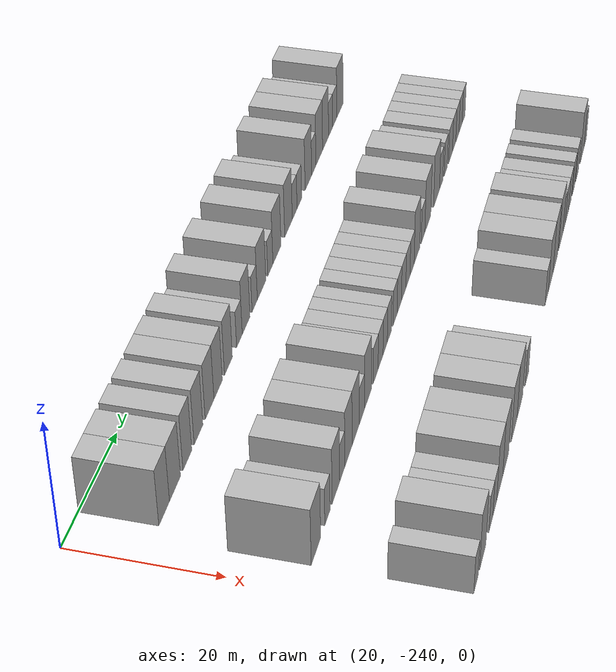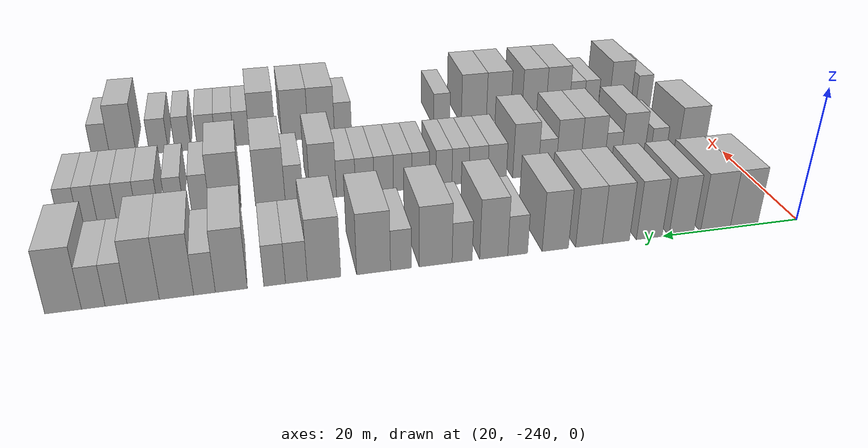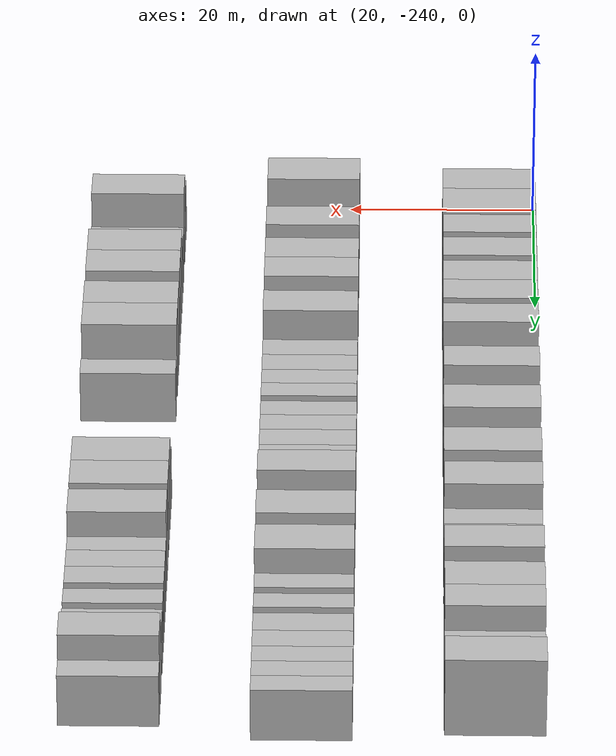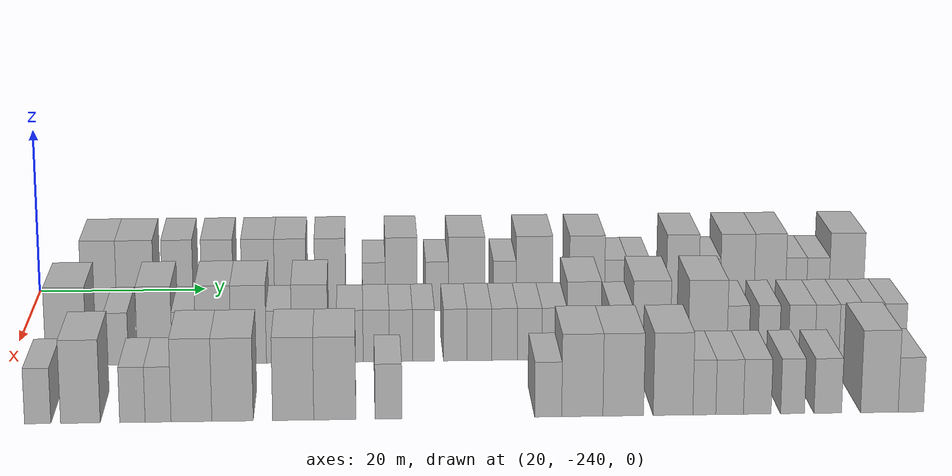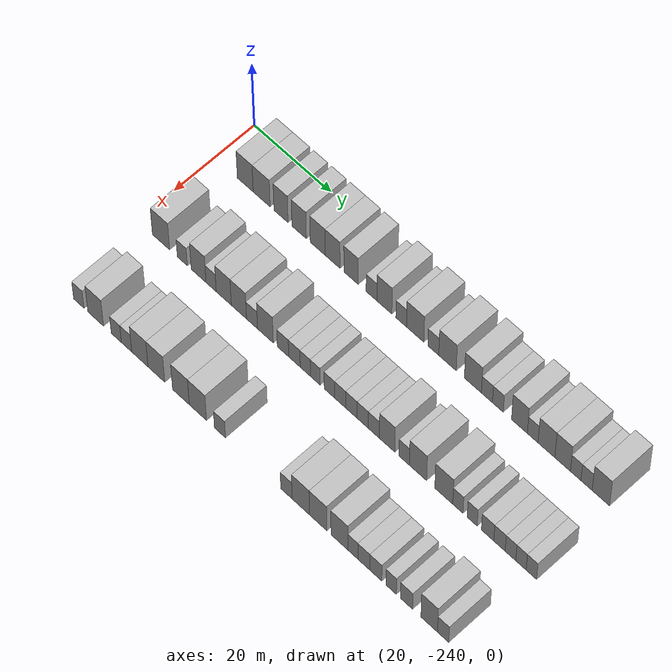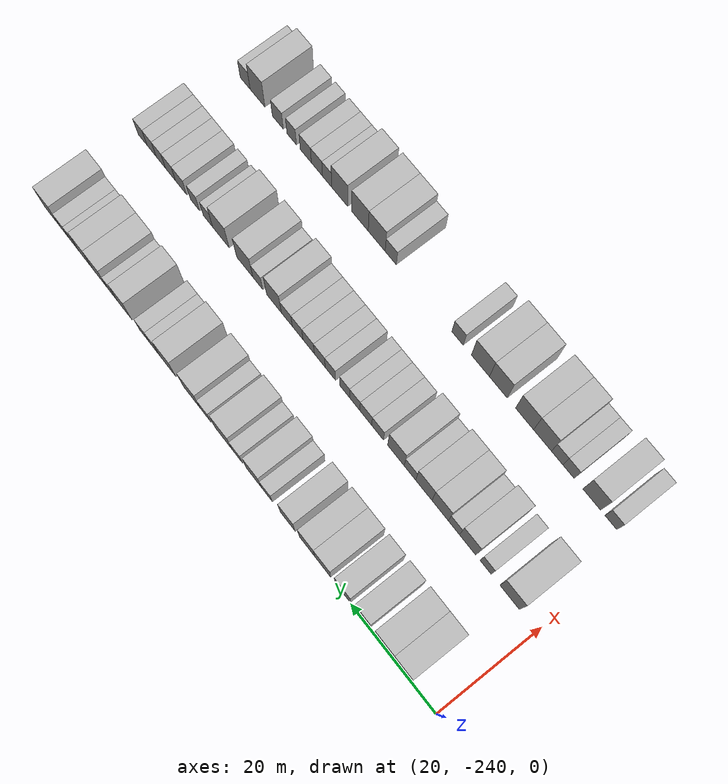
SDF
<sdf version="1.6">
 <world name="default">
  <model name="building_1">
   <static>1</static>
   <pose>25.0000 -231.9300 0 0.000000 0.000000 0.000000</pose>
   <link name="link">
    <pose>0 0 4.50 0 0 0</pose>
    <collision name="collision"><geometry><box><size>10.0000 4.1400 9.0000</size></box></geometry></collision>
    <visual name="visual">
     <cast_shadows>0</cast_shadows>
     <geometry><box><size>10.0000 4.1400 9.0000</size></box></geometry>
     <material>
      <script>
       <uri>model://HANNAS_wall/materials/scripts</uri>
       <uri>model://HANNAS_wall/materials/textures</uri>
       <name>vrc/HANNAS_wall</name>
      </script>
     </material>
    </visual>
   </link>
  </model>
  <model name="building_2">
   <static>1</static>
   <pose>25.0000 -227.6658 0 0.000000 0.000000 0.000000</pose>
   <link name="link">
    <pose>0 0 4.50 0 0 0</pose>
    <collision name="collision"><geometry><box><size>10.0000 4.3886 9.0000</size></box></geometry></collision>
    <visual name="visual">
     <cast_shadows>0</cast_shadows>
     <geometry><box><size>10.0000 4.3886 9.0000</size></box></geometry>
     <material>
      <script>
       <uri>model://HANNAS_wall/materials/scripts</uri>
       <uri>model://HANNAS_wall/materials/textures</uri>
       <name>vrc/HANNAS_wall</name>
      </script>
     </material>
    </visual>
   </link>
  </model>
  <model name="building_3">
   <static>1</static>
   <pose>25.0000 -222.6575 0 0.000000 0.000000 0.000000</pose>
   <link name="link">
    <pose>0 0 4.50 0 0 0</pose>
    <collision name="collision"><geometry><box><size>10.0000 3.6280 9.0000</size></box></geometry></collision>
    <visual name="visual">
     <cast_shadows>0</cast_shadows>
     <geometry><box><size>10.0000 3.6280 9.0000</size></box></geometry>
     <material>
      <script>
       <uri>model://HANNAS_wall/materials/scripts</uri>
       <uri>model://HANNAS_wall/materials/textures</uri>
       <name>vrc/HANNAS_wall</name>
      </script>
     </material>
    </visual>
   </link>
  </model>
  <model name="building_4">
   <static>1</static>
   <pose>25.0000 -217.9881 0 0.000000 0.000000 0.000000</pose>
   <link name="link">
    <pose>0 0 4.50 0 0 0</pose>
    <collision name="collision"><geometry><box><size>10.0000 3.7108 9.0000</size></box></geometry></collision>
    <visual name="visual">
     <cast_shadows>0</cast_shadows>
     <geometry><box><size>10.0000 3.7108 9.0000</size></box></geometry>
     <material>
      <script>
       <uri>model://HANNAS_wall/materials/scripts</uri>
       <uri>model://HANNAS_wall/materials/textures</uri>
       <name>vrc/HANNAS_wall</name>
      </script>
     </material>
    </visual>
   </link>
  </model>
  <model name="building_5">
   <static>1</static>
   <pose>25.0000 -213.2037 0 0.000000 0.000000 0.000000</pose>
   <link name="link">
    <pose>0 0 4.50 0 0 0</pose>
    <collision name="collision"><geometry><box><size>10.0000 3.8580 9.0000</size></box></geometry></collision>
    <visual name="visual">
     <cast_shadows>0</cast_shadows>
     <geometry><box><size>10.0000 3.8580 9.0000</size></box></geometry>
     <material>
      <script>
       <uri>model://HANNAS_wall/materials/scripts</uri>
       <uri>model://HANNAS_wall/materials/textures</uri>
       <name>vrc/HANNAS_wall</name>
      </script>
     </material>
    </visual>
   </link>
  </model>
  <model name="building_6">
   <static>1</static>
   <pose>25.0000 -209.4045 0 0.000000 0.000000 0.000000</pose>
   <link name="link">
    <pose>0 0 4.50 0 0 0</pose>
    <collision name="collision"><geometry><box><size>10.0000 3.7403 9.0000</size></box></geometry></collision>
    <visual name="visual">
     <cast_shadows>0</cast_shadows>
     <geometry><box><size>10.0000 3.7403 9.0000</size></box></geometry>
     <material>
      <script>
       <uri>model://HANNAS_wall/materials/scripts</uri>
       <uri>model://HANNAS_wall/materials/textures</uri>
       <name>vrc/HANNAS_wall</name>
      </script>
     </material>
    </visual>
   </link>
  </model>
  <model name="building_7">
   <static>1</static>
   <pose>25.0000 -204.7164 0 0.000000 0.000000 0.000000</pose>
   <link name="link">
    <pose>0 0 4.50 0 0 0</pose>
    <collision name="collision"><geometry><box><size>10.0000 3.6358 9.0000</size></box></geometry></collision>
    <visual name="visual">
     <cast_shadows>0</cast_shadows>
     <geometry><box><size>10.0000 3.6358 9.0000</size></box></geometry>
     <material>
      <script>
       <uri>model://HANNAS_wall/materials/scripts</uri>
       <uri>model://HANNAS_wall/materials/textures</uri>
       <name>vrc/HANNAS_wall</name>
      </script>
     </material>
    </visual>
   </link>
  </model>
  <model name="building_8">
   <static>1</static>
   <pose>25.0000 -199.5510 0 0.000000 0.000000 0.000000</pose>
   <link name="link">
    <pose>0 0 3.00 0 0 0</pose>
    <collision name="collision"><geometry><box><size>10.0000 2.6950 6.0000</size></box></geometry></collision>
    <visual name="visual">
     <cast_shadows>0</cast_shadows>
     <geometry><box><size>10.0000 2.6950 6.0000</size></box></geometry>
     <material>
      <script>
       <uri>model://HANNAS_wall/materials/scripts</uri>
       <uri>model://HANNAS_wall/materials/textures</uri>
       <name>vrc/HANNAS_wall</name>
      </script>
     </material>
    </visual>
   </link>
  </model>
  <model name="building_9">
   <static>1</static>
   <pose>25.0000 -196.3147 0 0.000000 0.000000 0.000000</pose>
   <link name="link">
    <pose>0 0 4.50 0 0 0</pose>
    <collision name="collision"><geometry><box><size>10.0000 3.7777 9.0000</size></box></geometry></collision>
    <visual name="visual">
     <cast_shadows>0</cast_shadows>
     <geometry><box><size>10.0000 3.7777 9.0000</size></box></geometry>
     <material>
      <script>
       <uri>model://HANNAS_wall/materials/scripts</uri>
       <uri>model://HANNAS_wall/materials/textures</uri>
       <name>vrc/HANNAS_wall</name>
      </script>
     </material>
    </visual>
   </link>
  </model>
  <model name="building_10">
   <static>1</static>
   <pose>25.0000 -192.0925 0 0.000000 0.000000 0.000000</pose>
   <link name="link">
    <pose>0 0 3.00 0 0 0</pose>
    <collision name="collision"><geometry><box><size>10.0000 2.6668 6.0000</size></box></geometry></collision>
    <visual name="visual">
     <cast_shadows>0</cast_shadows>
     <geometry><box><size>10.0000 2.6668 6.0000</size></box></geometry>
     <material>
      <script>
       <uri>model://HANNAS_wall/materials/scripts</uri>
       <uri>model://HANNAS_wall/materials/textures</uri>
       <name>vrc/HANNAS_wall</name>
      </script>
     </material>
    </visual>
   </link>
  </model>
  <model name="building_11">
   <static>1</static>
   <pose>25.0000 -188.5993 0 0.000000 0.000000 0.000000</pose>
   <link name="link">
    <pose>0 0 4.50 0 0 0</pose>
    <collision name="collision"><geometry><box><size>10.0000 4.3197 9.0000</size></box></geometry></collision>
    <visual name="visual">
     <cast_shadows>0</cast_shadows>
     <geometry><box><size>10.0000 4.3197 9.0000</size></box></geometry>
     <material>
      <script>
       <uri>model://HANNAS_wall/materials/scripts</uri>
       <uri>model://HANNAS_wall/materials/textures</uri>
       <name>vrc/HANNAS_wall</name>
      </script>
     </material>
    </visual>
   </link>
  </model>
  <model name="building_12">
   <static>1</static>
   <pose>25.0000 -184.0821 0 0.000000 0.000000 0.000000</pose>
   <link name="link">
    <pose>0 0 3.00 0 0 0</pose>
    <collision name="collision"><geometry><box><size>10.0000 2.7145 6.0000</size></box></geometry></collision>
    <visual name="visual">
     <cast_shadows>0</cast_shadows>
     <geometry><box><size>10.0000 2.7145 6.0000</size></box></geometry>
     <material>
      <script>
       <uri>model://HANNAS_wall/materials/scripts</uri>
       <uri>model://HANNAS_wall/materials/textures</uri>
       <name>vrc/HANNAS_wall</name>
      </script>
     </material>
    </visual>
   </link>
  </model>
  <model name="building_13">
   <static>1</static>
   <pose>25.0000 -180.5625 0 0.000000 0.000000 0.000000</pose>
   <link name="link">
    <pose>0 0 4.50 0 0 0</pose>
    <collision name="collision"><geometry><box><size>10.0000 4.3248 9.0000</size></box></geometry></collision>
    <visual name="visual">
     <cast_shadows>0</cast_shadows>
     <geometry><box><size>10.0000 4.3248 9.0000</size></box></geometry>
     <material>
      <script>
       <uri>model://HANNAS_wall/materials/scripts</uri>
       <uri>model://HANNAS_wall/materials/textures</uri>
       <name>vrc/HANNAS_wall</name>
      </script>
     </material>
    </visual>
   </link>
  </model>
  <model name="building_14">
   <static>1</static>
   <pose>25.0000 -174.3035 0 0.000000 0.000000 0.000000</pose>
   <link name="link">
    <pose>0 0 4.50 0 0 0</pose>
    <collision name="collision"><geometry><box><size>10.0000 4.1932 9.0000</size></box></geometry></collision>
    <visual name="visual">
     <cast_shadows>0</cast_shadows>
     <geometry><box><size>10.0000 4.1932 9.0000</size></box></geometry>
     <material>
      <script>
       <uri>model://HANNAS_wall/materials/scripts</uri>
       <uri>model://HANNAS_wall/materials/textures</uri>
       <name>vrc/HANNAS_wall</name>
      </script>
     </material>
    </visual>
   </link>
  </model>
  <model name="building_15">
   <static>1</static>
   <pose>25.0000 -170.8588 0 0.000000 0.000000 0.000000</pose>
   <link name="link">
    <pose>0 0 3.00 0 0 0</pose>
    <collision name="collision"><geometry><box><size>10.0000 2.6962 6.0000</size></box></geometry></collision>
    <visual name="visual">
     <cast_shadows>0</cast_shadows>
     <geometry><box><size>10.0000 2.6962 6.0000</size></box></geometry>
     <material>
      <script>
       <uri>model://HANNAS_wall/materials/scripts</uri>
       <uri>model://HANNAS_wall/materials/textures</uri>
       <name>vrc/HANNAS_wall</name>
      </script>
     </material>
    </visual>
   </link>
  </model>
  <model name="building_16">
   <static>1</static>
   <pose>25.0000 -168.1811 0 0.000000 0.000000 0.000000</pose>
   <link name="link">
    <pose>0 0 3.00 0 0 0</pose>
    <collision name="collision"><geometry><box><size>10.0000 2.6592 6.0000</size></box></geometry></collision>
    <visual name="visual">
     <cast_shadows>0</cast_shadows>
     <geometry><box><size>10.0000 2.6592 6.0000</size></box></geometry>
     <material>
      <script>
       <uri>model://HANNAS_wall/materials/scripts</uri>
       <uri>model://HANNAS_wall/materials/textures</uri>
       <name>vrc/HANNAS_wall</name>
      </script>
     </material>
    </visual>
   </link>
  </model>
  <model name="building_17">
   <static>1</static>
   <pose>25.0000 -162.9229 0 0.000000 0.000000 0.000000</pose>
   <link name="link">
    <pose>0 0 4.50 0 0 0</pose>
    <collision name="collision"><geometry><box><size>10.0000 3.8572 9.0000</size></box></geometry></collision>
    <visual name="visual">
     <cast_shadows>0</cast_shadows>
     <geometry><box><size>10.0000 3.8572 9.0000</size></box></geometry>
     <material>
      <script>
       <uri>model://HANNAS_wall/materials/scripts</uri>
       <uri>model://HANNAS_wall/materials/textures</uri>
       <name>vrc/HANNAS_wall</name>
      </script>
     </material>
    </visual>
   </link>
  </model>
  <model name="building_18">
   <static>1</static>
   <pose>25.0000 -159.7035 0 0.000000 0.000000 0.000000</pose>
   <link name="link">
    <pose>0 0 3.00 0 0 0</pose>
    <collision name="collision"><geometry><box><size>10.0000 2.5816 6.0000</size></box></geometry></collision>
    <visual name="visual">
     <cast_shadows>0</cast_shadows>
     <geometry><box><size>10.0000 2.5816 6.0000</size></box></geometry>
     <material>
      <script>
       <uri>model://HANNAS_wall/materials/scripts</uri>
       <uri>model://HANNAS_wall/materials/textures</uri>
       <name>vrc/HANNAS_wall</name>
      </script>
     </material>
    </visual>
   </link>
  </model>
  <model name="building_19">
   <static>1</static>
   <pose>25.0000 -156.3843 0 0.000000 0.000000 0.000000</pose>
   <link name="link">
    <pose>0 0 4.50 0 0 0</pose>
    <collision name="collision"><geometry><box><size>10.0000 4.0568 9.0000</size></box></geometry></collision>
    <visual name="visual">
     <cast_shadows>0</cast_shadows>
     <geometry><box><size>10.0000 4.0568 9.0000</size></box></geometry>
     <material>
      <script>
       <uri>model://HANNAS_wall/materials/scripts</uri>
       <uri>model://HANNAS_wall/materials/textures</uri>
       <name>vrc/HANNAS_wall</name>
      </script>
     </material>
    </visual>
   </link>
  </model>
  <model name="building_20">
   <static>1</static>
   <pose>25.0000 -152.4815 0 0.000000 0.000000 0.000000</pose>
   <link name="link">
    <pose>0 0 4.50 0 0 0</pose>
    <collision name="collision"><geometry><box><size>10.0000 3.7489 9.0000</size></box></geometry></collision>
    <visual name="visual">
     <cast_shadows>0</cast_shadows>
     <geometry><box><size>10.0000 3.7489 9.0000</size></box></geometry>
     <material>
      <script>
       <uri>model://HANNAS_wall/materials/scripts</uri>
       <uri>model://HANNAS_wall/materials/textures</uri>
       <name>vrc/HANNAS_wall</name>
      </script>
     </material>
    </visual>
   </link>
  </model>
  <model name="building_21">
   <static>1</static>
   <pose>25.0000 -149.3483 0 0.000000 0.000000 0.000000</pose>
   <link name="link">
    <pose>0 0 3.00 0 0 0</pose>
    <collision name="collision"><geometry><box><size>10.0000 2.5174 6.0000</size></box></geometry></collision>
    <visual name="visual">
     <cast_shadows>0</cast_shadows>
     <geometry><box><size>10.0000 2.5174 6.0000</size></box></geometry>
     <material>
      <script>
       <uri>model://HANNAS_wall/materials/scripts</uri>
       <uri>model://HANNAS_wall/materials/textures</uri>
       <name>vrc/HANNAS_wall</name>
      </script>
     </material>
    </visual>
   </link>
  </model>
  <model name="building_22">
   <static>1</static>
   <pose>25.0000 -146.7445 0 0.000000 0.000000 0.000000</pose>
   <link name="link">
    <pose>0 0 3.00 0 0 0</pose>
    <collision name="collision"><geometry><box><size>10.0000 2.6901 6.0000</size></box></geometry></collision>
    <visual name="visual">
     <cast_shadows>0</cast_shadows>
     <geometry><box><size>10.0000 2.6901 6.0000</size></box></geometry>
     <material>
      <script>
       <uri>model://HANNAS_wall/materials/scripts</uri>
       <uri>model://HANNAS_wall/materials/textures</uri>
       <name>vrc/HANNAS_wall</name>
      </script>
     </material>
    </visual>
   </link>
  </model>
  <model name="building_23">
   <static>1</static>
   <pose>25.0000 -143.3274 0 0.000000 0.000000 0.000000</pose>
   <link name="link">
    <pose>0 0 4.50 0 0 0</pose>
    <collision name="collision"><geometry><box><size>10.0000 4.1442 9.0000</size></box></geometry></collision>
    <visual name="visual">
     <cast_shadows>0</cast_shadows>
     <geometry><box><size>10.0000 4.1442 9.0000</size></box></geometry>
     <material>
      <script>
       <uri>model://HANNAS_wall/materials/scripts</uri>
       <uri>model://HANNAS_wall/materials/textures</uri>
       <name>vrc/HANNAS_wall</name>
      </script>
     </material>
    </visual>
   </link>
  </model>
  <model name="building_118">
   <static>1</static>
   <pose>44.0000 -233.7521 0 0.000000 0.000000 0.000000</pose>
   <link name="link">
    <pose>0 0 4.50 0 0 0</pose>
    <collision name="collision"><geometry><box><size>10.0000 4.4958 9.0000</size></box></geometry></collision>
    <visual name="visual">
     <cast_shadows>0</cast_shadows>
     <geometry><box><size>10.0000 4.4958 9.0000</size></box></geometry>
     <material>
      <script>
       <uri>model://HANNAS_wall/materials/scripts</uri>
       <uri>model://HANNAS_wall/materials/textures</uri>
       <name>vrc/HANNAS_wall</name>
      </script>
     </material>
    </visual>
   </link>
  </model>
  <model name="building_119">
   <static>1</static>
   <pose>44.0000 -228.2016 0 0.000000 0.000000 0.000000</pose>
   <link name="link">
    <pose>0 0 3.00 0 0 0</pose>
    <collision name="collision"><geometry><box><size>10.0000 2.6052 6.0000</size></box></geometry></collision>
    <visual name="visual">
     <cast_shadows>0</cast_shadows>
     <geometry><box><size>10.0000 2.6052 6.0000</size></box></geometry>
     <material>
      <script>
       <uri>model://HANNAS_wall/materials/scripts</uri>
       <uri>model://HANNAS_wall/materials/textures</uri>
       <name>vrc/HANNAS_wall</name>
      </script>
     </material>
    </visual>
   </link>
  </model>
  <model name="building_120">
   <static>1</static>
   <pose>44.0000 -223.9816 0 0.000000 0.000000 0.000000</pose>
   <link name="link">
    <pose>0 0 4.50 0 0 0</pose>
    <collision name="collision"><geometry><box><size>10.0000 3.8347 9.0000</size></box></geometry></collision>
    <visual name="visual">
     <cast_shadows>0</cast_shadows>
     <geometry><box><size>10.0000 3.8347 9.0000</size></box></geometry>
     <material>
      <script>
       <uri>model://HANNAS_wall/materials/scripts</uri>
       <uri>model://HANNAS_wall/materials/textures</uri>
       <name>vrc/HANNAS_wall</name>
      </script>
     </material>
    </visual>
   </link>
  </model>
  <model name="building_121">
   <static>1</static>
   <pose>44.0000 -220.7462 0 0.000000 0.000000 0.000000</pose>
   <link name="link">
    <pose>0 0 3.00 0 0 0</pose>
    <collision name="collision"><geometry><box><size>10.0000 2.6362 6.0000</size></box></geometry></collision>
    <visual name="visual">
     <cast_shadows>0</cast_shadows>
     <geometry><box><size>10.0000 2.6362 6.0000</size></box></geometry>
     <material>
      <script>
       <uri>model://HANNAS_wall/materials/scripts</uri>
       <uri>model://HANNAS_wall/materials/textures</uri>
       <name>vrc/HANNAS_wall</name>
      </script>
     </material>
    </visual>
   </link>
  </model>
  <model name="building_122">
   <static>1</static>
   <pose>44.0000 -217.4880 0 0.000000 0.000000 0.000000</pose>
   <link name="link">
    <pose>0 0 4.50 0 0 0</pose>
    <collision name="collision"><geometry><box><size>10.0000 3.8800 9.0000</size></box></geometry></collision>
    <visual name="visual">
     <cast_shadows>0</cast_shadows>
     <geometry><box><size>10.0000 3.8800 9.0000</size></box></geometry>
     <material>
      <script>
       <uri>model://HANNAS_wall/materials/scripts</uri>
       <uri>model://HANNAS_wall/materials/textures</uri>
       <name>vrc/HANNAS_wall</name>
      </script>
     </material>
    </visual>
   </link>
  </model>
  <model name="building_123">
   <static>1</static>
   <pose>44.0000 -213.5991 0 0.000000 0.000000 0.000000</pose>
   <link name="link">
    <pose>0 0 4.50 0 0 0</pose>
    <collision name="collision"><geometry><box><size>10.0000 3.8978 9.0000</size></box></geometry></collision>
    <visual name="visual">
     <cast_shadows>0</cast_shadows>
     <geometry><box><size>10.0000 3.8978 9.0000</size></box></geometry>
     <material>
      <script>
       <uri>model://HANNAS_wall/materials/scripts</uri>
       <uri>model://HANNAS_wall/materials/textures</uri>
       <name>vrc/HANNAS_wall</name>
      </script>
     </material>
    </visual>
   </link>
  </model>
  <model name="building_124">
   <static>1</static>
   <pose>44.0000 -210.2439 0 0.000000 0.000000 0.000000</pose>
   <link name="link">
    <pose>0 0 3.00 0 0 0</pose>
    <collision name="collision"><geometry><box><size>10.0000 2.8127 6.0000</size></box></geometry></collision>
    <visual name="visual">
     <cast_shadows>0</cast_shadows>
     <geometry><box><size>10.0000 2.8127 6.0000</size></box></geometry>
     <material>
      <script>
       <uri>model://HANNAS_wall/materials/scripts</uri>
       <uri>model://HANNAS_wall/materials/textures</uri>
       <name>vrc/HANNAS_wall</name>
      </script>
     </material>
    </visual>
   </link>
  </model>
  <model name="building_125">
   <static>1</static>
   <pose>44.0000 -206.8355 0 0.000000 0.000000 0.000000</pose>
   <link name="link">
    <pose>0 0 4.50 0 0 0</pose>
    <collision name="collision"><geometry><box><size>10.0000 4.0039 9.0000</size></box></geometry></collision>
    <visual name="visual">
     <cast_shadows>0</cast_shadows>
     <geometry><box><size>10.0000 4.0039 9.0000</size></box></geometry>
     <material>
      <script>
       <uri>model://HANNAS_wall/materials/scripts</uri>
       <uri>model://HANNAS_wall/materials/textures</uri>
       <name>vrc/HANNAS_wall</name>
      </script>
     </material>
    </visual>
   </link>
  </model>
  <model name="building_126">
   <static>1</static>
   <pose>44.0000 -202.3803 0 0.000000 0.000000 0.000000</pose>
   <link name="link">
    <pose>0 0 3.00 0 0 0</pose>
    <collision name="collision"><geometry><box><size>10.0000 2.9065 6.0000</size></box></geometry></collision>
    <visual name="visual">
     <cast_shadows>0</cast_shadows>
     <geometry><box><size>10.0000 2.9065 6.0000</size></box></geometry>
     <material>
      <script>
       <uri>model://HANNAS_wall/materials/scripts</uri>
       <uri>model://HANNAS_wall/materials/textures</uri>
       <name>vrc/HANNAS_wall</name>
      </script>
     </material>
    </visual>
   </link>
  </model>
  <model name="building_127">
   <static>1</static>
   <pose>44.0000 -199.4735 0 0.000000 0.000000 0.000000</pose>
   <link name="link">
    <pose>0 0 3.00 0 0 0</pose>
    <collision name="collision"><geometry><box><size>10.0000 2.9071 6.0000</size></box></geometry></collision>
    <visual name="visual">
     <cast_shadows>0</cast_shadows>
     <geometry><box><size>10.0000 2.9071 6.0000</size></box></geometry>
     <material>
      <script>
       <uri>model://HANNAS_wall/materials/scripts</uri>
       <uri>model://HANNAS_wall/materials/textures</uri>
       <name>vrc/HANNAS_wall</name>
      </script>
     </material>
    </visual>
   </link>
  </model>
  <model name="building_128">
   <static>1</static>
   <pose>44.0000 -196.7308 0 0.000000 0.000000 0.000000</pose>
   <link name="link">
    <pose>0 0 3.00 0 0 0</pose>
    <collision name="collision"><geometry><box><size>10.0000 2.5783 6.0000</size></box></geometry></collision>
    <visual name="visual">
     <cast_shadows>0</cast_shadows>
     <geometry><box><size>10.0000 2.5783 6.0000</size></box></geometry>
     <material>
      <script>
       <uri>model://HANNAS_wall/materials/scripts</uri>
       <uri>model://HANNAS_wall/materials/textures</uri>
       <name>vrc/HANNAS_wall</name>
      </script>
     </material>
    </visual>
   </link>
  </model>
  <model name="building_129">
   <static>1</static>
   <pose>44.0000 -194.2161 0 0.000000 0.000000 0.000000</pose>
   <link name="link">
    <pose>0 0 3.00 0 0 0</pose>
    <collision name="collision"><geometry><box><size>10.0000 2.4512 6.0000</size></box></geometry></collision>
    <visual name="visual">
     <cast_shadows>0</cast_shadows>
     <geometry><box><size>10.0000 2.4512 6.0000</size></box></geometry>
     <material>
      <script>
       <uri>model://HANNAS_wall/materials/scripts</uri>
       <uri>model://HANNAS_wall/materials/textures</uri>
       <name>vrc/HANNAS_wall</name>
      </script>
     </material>
    </visual>
   </link>
  </model>
  <model name="building_130">
   <static>1</static>
   <pose>44.0000 -190.6814 0 0.000000 0.000000 0.000000</pose>
   <link name="link">
    <pose>0 0 3.00 0 0 0</pose>
    <collision name="collision"><geometry><box><size>10.0000 2.6181 6.0000</size></box></geometry></collision>
    <visual name="visual">
     <cast_shadows>0</cast_shadows>
     <geometry><box><size>10.0000 2.6181 6.0000</size></box></geometry>
     <material>
      <script>
       <uri>model://HANNAS_wall/materials/scripts</uri>
       <uri>model://HANNAS_wall/materials/textures</uri>
       <name>vrc/HANNAS_wall</name>
      </script>
     </material>
    </visual>
   </link>
  </model>
  <model name="building_131">
   <static>1</static>
   <pose>44.0000 -188.0033 0 0.000000 0.000000 0.000000</pose>
   <link name="link">
    <pose>0 0 3.00 0 0 0</pose>
    <collision name="collision"><geometry><box><size>10.0000 2.7381 6.0000</size></box></geometry></collision>
    <visual name="visual">
     <cast_shadows>0</cast_shadows>
     <geometry><box><size>10.0000 2.7381 6.0000</size></box></geometry>
     <material>
      <script>
       <uri>model://HANNAS_wall/materials/scripts</uri>
       <uri>model://HANNAS_wall/materials/textures</uri>
       <name>vrc/HANNAS_wall</name>
      </script>
     </material>
    </visual>
   </link>
  </model>
  <model name="building_132">
   <static>1</static>
   <pose>44.0000 -185.1999 0 0.000000 0.000000 0.000000</pose>
   <link name="link">
    <pose>0 0 3.00 0 0 0</pose>
    <collision name="collision"><geometry><box><size>10.0000 2.8688 6.0000</size></box></geometry></collision>
    <visual name="visual">
     <cast_shadows>0</cast_shadows>
     <geometry><box><size>10.0000 2.8688 6.0000</size></box></geometry>
     <material>
      <script>
       <uri>model://HANNAS_wall/materials/scripts</uri>
       <uri>model://HANNAS_wall/materials/textures</uri>
       <name>vrc/HANNAS_wall</name>
      </script>
     </material>
    </visual>
   </link>
  </model>
  <model name="building_133">
   <static>1</static>
   <pose>44.0000 -182.4056 0 0.000000 0.000000 0.000000</pose>
   <link name="link">
    <pose>0 0 3.00 0 0 0</pose>
    <collision name="collision"><geometry><box><size>10.0000 2.7199 6.0000</size></box></geometry></collision>
    <visual name="visual">
     <cast_shadows>0</cast_shadows>
     <geometry><box><size>10.0000 2.7199 6.0000</size></box></geometry>
     <material>
      <script>
       <uri>model://HANNAS_wall/materials/scripts</uri>
       <uri>model://HANNAS_wall/materials/textures</uri>
       <name>vrc/HANNAS_wall</name>
      </script>
     </material>
    </visual>
   </link>
  </model>
  <model name="building_134">
   <static>1</static>
   <pose>44.0000 -179.6559 0 0.000000 0.000000 0.000000</pose>
   <link name="link">
    <pose>0 0 3.00 0 0 0</pose>
    <collision name="collision"><geometry><box><size>10.0000 2.7794 6.0000</size></box></geometry></collision>
    <visual name="visual">
     <cast_shadows>0</cast_shadows>
     <geometry><box><size>10.0000 2.7794 6.0000</size></box></geometry>
     <material>
      <script>
       <uri>model://HANNAS_wall/materials/scripts</uri>
       <uri>model://HANNAS_wall/materials/textures</uri>
       <name>vrc/HANNAS_wall</name>
      </script>
     </material>
    </visual>
   </link>
  </model>
  <model name="building_135">
   <static>1</static>
   <pose>44.0000 -176.3623 0 0.000000 0.000000 0.000000</pose>
   <link name="link">
    <pose>0 0 4.50 0 0 0</pose>
    <collision name="collision"><geometry><box><size>10.0000 3.8079 9.0000</size></box></geometry></collision>
    <visual name="visual">
     <cast_shadows>0</cast_shadows>
     <geometry><box><size>10.0000 3.8079 9.0000</size></box></geometry>
     <material>
      <script>
       <uri>model://HANNAS_wall/materials/scripts</uri>
       <uri>model://HANNAS_wall/materials/textures</uri>
       <name>vrc/HANNAS_wall</name>
      </script>
     </material>
    </visual>
   </link>
  </model>
  <model name="building_136">
   <static>1</static>
   <pose>44.0000 -172.1785 0 0.000000 0.000000 0.000000</pose>
   <link name="link">
    <pose>0 0 3.00 0 0 0</pose>
    <collision name="collision"><geometry><box><size>10.0000 2.5597 6.0000</size></box></geometry></collision>
    <visual name="visual">
     <cast_shadows>0</cast_shadows>
     <geometry><box><size>10.0000 2.5597 6.0000</size></box></geometry>
     <material>
      <script>
       <uri>model://HANNAS_wall/materials/scripts</uri>
       <uri>model://HANNAS_wall/materials/textures</uri>
       <name>vrc/HANNAS_wall</name>
      </script>
     </material>
    </visual>
   </link>
  </model>
  <model name="building_137">
   <static>1</static>
   <pose>44.0000 -168.7925 0 0.000000 0.000000 0.000000</pose>
   <link name="link">
    <pose>0 0 4.50 0 0 0</pose>
    <collision name="collision"><geometry><box><size>10.0000 4.2124 9.0000</size></box></geometry></collision>
    <visual name="visual">
     <cast_shadows>0</cast_shadows>
     <geometry><box><size>10.0000 4.2124 9.0000</size></box></geometry>
     <material>
      <script>
       <uri>model://HANNAS_wall/materials/scripts</uri>
       <uri>model://HANNAS_wall/materials/textures</uri>
       <name>vrc/HANNAS_wall</name>
      </script>
     </material>
    </visual>
   </link>
  </model>
  <model name="building_138">
   <static>1</static>
   <pose>44.0000 -162.5073 0 0.000000 0.000000 0.000000</pose>
   <link name="link">
    <pose>0 0 4.50 0 0 0</pose>
    <collision name="collision"><geometry><box><size>10.0000 4.3579 9.0000</size></box></geometry></collision>
    <visual name="visual">
     <cast_shadows>0</cast_shadows>
     <geometry><box><size>10.0000 4.3579 9.0000</size></box></geometry>
     <material>
      <script>
       <uri>model://HANNAS_wall/materials/scripts</uri>
       <uri>model://HANNAS_wall/materials/textures</uri>
       <name>vrc/HANNAS_wall</name>
      </script>
     </material>
    </visual>
   </link>
  </model>
  <model name="building_139">
   <static>1</static>
   <pose>44.0000 -159.0869 0 0.000000 0.000000 0.000000</pose>
   <link name="link">
    <pose>0 0 3.00 0 0 0</pose>
    <collision name="collision"><geometry><box><size>10.0000 2.4829 6.0000</size></box></geometry></collision>
    <visual name="visual">
     <cast_shadows>0</cast_shadows>
     <geometry><box><size>10.0000 2.4829 6.0000</size></box></geometry>
     <material>
      <script>
       <uri>model://HANNAS_wall/materials/scripts</uri>
       <uri>model://HANNAS_wall/materials/textures</uri>
       <name>vrc/HANNAS_wall</name>
      </script>
     </material>
    </visual>
   </link>
  </model>
  <model name="building_140">
   <static>1</static>
   <pose>44.0000 -155.6313 0 0.000000 0.000000 0.000000</pose>
   <link name="link">
    <pose>0 0 3.00 0 0 0</pose>
    <collision name="collision"><geometry><box><size>10.0000 2.4282 6.0000</size></box></geometry></collision>
    <visual name="visual">
     <cast_shadows>0</cast_shadows>
     <geometry><box><size>10.0000 2.4282 6.0000</size></box></geometry>
     <material>
      <script>
       <uri>model://HANNAS_wall/materials/scripts</uri>
       <uri>model://HANNAS_wall/materials/textures</uri>
       <name>vrc/HANNAS_wall</name>
      </script>
     </material>
    </visual>
   </link>
  </model>
  <model name="building_141">
   <static>1</static>
   <pose>44.0000 -151.9182 0 0.000000 0.000000 0.000000</pose>
   <link name="link">
    <pose>0 0 3.00 0 0 0</pose>
    <collision name="collision"><geometry><box><size>10.0000 2.9980 6.0000</size></box></geometry></collision>
    <visual name="visual">
     <cast_shadows>0</cast_shadows>
     <geometry><box><size>10.0000 2.9980 6.0000</size></box></geometry>
     <material>
      <script>
       <uri>model://HANNAS_wall/materials/scripts</uri>
       <uri>model://HANNAS_wall/materials/textures</uri>
       <name>vrc/HANNAS_wall</name>
      </script>
     </material>
    </visual>
   </link>
  </model>
  <model name="building_142">
   <static>1</static>
   <pose>44.0000 -149.0606 0 0.000000 0.000000 0.000000</pose>
   <link name="link">
    <pose>0 0 3.00 0 0 0</pose>
    <collision name="collision"><geometry><box><size>10.0000 2.7173 6.0000</size></box></geometry></collision>
    <visual name="visual">
     <cast_shadows>0</cast_shadows>
     <geometry><box><size>10.0000 2.7173 6.0000</size></box></geometry>
     <material>
      <script>
       <uri>model://HANNAS_wall/materials/scripts</uri>
       <uri>model://HANNAS_wall/materials/textures</uri>
       <name>vrc/HANNAS_wall</name>
      </script>
     </material>
    </visual>
   </link>
  </model>
  <model name="building_143">
   <static>1</static>
   <pose>44.0000 -146.4356 0 0.000000 0.000000 0.000000</pose>
   <link name="link">
    <pose>0 0 3.00 0 0 0</pose>
    <collision name="collision"><geometry><box><size>10.0000 2.5328 6.0000</size></box></geometry></collision>
    <visual name="visual">
     <cast_shadows>0</cast_shadows>
     <geometry><box><size>10.0000 2.5328 6.0000</size></box></geometry>
     <material>
      <script>
       <uri>model://HANNAS_wall/materials/scripts</uri>
       <uri>model://HANNAS_wall/materials/textures</uri>
       <name>vrc/HANNAS_wall</name>
      </script>
     </material>
    </visual>
   </link>
  </model>
  <model name="building_144">
   <static>1</static>
   <pose>44.0000 -143.9259 0 0.000000 0.000000 0.000000</pose>
   <link name="link">
    <pose>0 0 3.00 0 0 0</pose>
    <collision name="collision"><geometry><box><size>10.0000 2.4866 6.0000</size></box></geometry></collision>
    <visual name="visual">
     <cast_shadows>0</cast_shadows>
     <geometry><box><size>10.0000 2.4866 6.0000</size></box></geometry>
     <material>
      <script>
       <uri>model://HANNAS_wall/materials/scripts</uri>
       <uri>model://HANNAS_wall/materials/textures</uri>
       <name>vrc/HANNAS_wall</name>
      </script>
     </material>
    </visual>
   </link>
  </model>
  <model name="building_145">
   <static>1</static>
   <pose>44.0000 -141.4397 0 0.000000 0.000000 0.000000</pose>
   <link name="link">
    <pose>0 0 3.00 0 0 0</pose>
    <collision name="collision"><geometry><box><size>10.0000 2.4858 6.0000</size></box></geometry></collision>
    <visual name="visual">
     <cast_shadows>0</cast_shadows>
     <geometry><box><size>10.0000 2.4858 6.0000</size></box></geometry>
     <material>
      <script>
       <uri>model://HANNAS_wall/materials/scripts</uri>
       <uri>model://HANNAS_wall/materials/textures</uri>
       <name>vrc/HANNAS_wall</name>
      </script>
     </material>
    </visual>
   </link>
  </model>
  <model name="building_246">
   <static>1</static>
   <pose>63.0000 -234.6482 0 0.000000 0.000000 0.000000</pose>
   <link name="link">
    <pose>0 0 3.00 0 0 0</pose>
    <collision name="collision"><geometry><box><size>10.0000 2.7037 6.0000</size></box></geometry></collision>
    <visual name="visual">
     <cast_shadows>0</cast_shadows>
     <geometry><box><size>10.0000 2.7037 6.0000</size></box></geometry>
     <material>
      <script>
       <uri>model://HANNAS_wall/materials/scripts</uri>
       <uri>model://HANNAS_wall/materials/textures</uri>
       <name>vrc/HANNAS_wall</name>
      </script>
     </material>
    </visual>
   </link>
  </model>
  <model name="building_247">
   <static>1</static>
   <pose>63.0000 -230.2538 0 0.000000 0.000000 0.000000</pose>
   <link name="link">
    <pose>0 0 4.50 0 0 0</pose>
    <collision name="collision"><geometry><box><size>10.0000 4.0850 9.0000</size></box></geometry></collision>
    <visual name="visual">
     <cast_shadows>0</cast_shadows>
     <geometry><box><size>10.0000 4.0850 9.0000</size></box></geometry>
     <material>
      <script>
       <uri>model://HANNAS_wall/materials/scripts</uri>
       <uri>model://HANNAS_wall/materials/textures</uri>
       <name>vrc/HANNAS_wall</name>
      </script>
     </material>
    </visual>
   </link>
  </model>
  <model name="building_248">
   <static>1</static>
   <pose>63.0000 -224.8975 0 0.000000 0.000000 0.000000</pose>
   <link name="link">
    <pose>0 0 3.00 0 0 0</pose>
    <collision name="collision"><geometry><box><size>10.0000 2.6277 6.0000</size></box></geometry></collision>
    <visual name="visual">
     <cast_shadows>0</cast_shadows>
     <geometry><box><size>10.0000 2.6277 6.0000</size></box></geometry>
     <material>
      <script>
       <uri>model://HANNAS_wall/materials/scripts</uri>
       <uri>model://HANNAS_wall/materials/textures</uri>
       <name>vrc/HANNAS_wall</name>
      </script>
     </material>
    </visual>
   </link>
  </model>
  <model name="building_249">
   <static>1</static>
   <pose>63.0000 -222.2445 0 0.000000 0.000000 0.000000</pose>
   <link name="link">
    <pose>0 0 3.00 0 0 0</pose>
    <collision name="collision"><geometry><box><size>10.0000 2.6783 6.0000</size></box></geometry></collision>
    <visual name="visual">
     <cast_shadows>0</cast_shadows>
     <geometry><box><size>10.0000 2.6783 6.0000</size></box></geometry>
     <material>
      <script>
       <uri>model://HANNAS_wall/materials/scripts</uri>
       <uri>model://HANNAS_wall/materials/textures</uri>
       <name>vrc/HANNAS_wall</name>
      </script>
     </material>
    </visual>
   </link>
  </model>
  <model name="building_250">
   <static>1</static>
   <pose>63.0000 -218.8004 0 0.000000 0.000000 0.000000</pose>
   <link name="link">
    <pose>0 0 4.50 0 0 0</pose>
    <collision name="collision"><geometry><box><size>10.0000 4.2098 9.0000</size></box></geometry></collision>
    <visual name="visual">
     <cast_shadows>0</cast_shadows>
     <geometry><box><size>10.0000 4.2098 9.0000</size></box></geometry>
     <material>
      <script>
       <uri>model://HANNAS_wall/materials/scripts</uri>
       <uri>model://HANNAS_wall/materials/textures</uri>
       <name>vrc/HANNAS_wall</name>
      </script>
     </material>
    </visual>
   </link>
  </model>
  <model name="building_251">
   <static>1</static>
   <pose>63.0000 -214.5548 0 0.000000 0.000000 0.000000</pose>
   <link name="link">
    <pose>0 0 4.50 0 0 0</pose>
    <collision name="collision"><geometry><box><size>10.0000 4.2814 9.0000</size></box></geometry></collision>
    <visual name="visual">
     <cast_shadows>0</cast_shadows>
     <geometry><box><size>10.0000 4.2814 9.0000</size></box></geometry>
     <material>
      <script>
       <uri>model://HANNAS_wall/materials/scripts</uri>
       <uri>model://HANNAS_wall/materials/textures</uri>
       <name>vrc/HANNAS_wall</name>
      </script>
     </material>
    </visual>
   </link>
  </model>
  <model name="building_252">
   <static>1</static>
   <pose>63.0000 -208.2789 0 0.000000 0.000000 0.000000</pose>
   <link name="link">
    <pose>0 0 4.50 0 0 0</pose>
    <collision name="collision"><geometry><box><size>10.0000 4.2705 9.0000</size></box></geometry></collision>
    <visual name="visual">
     <cast_shadows>0</cast_shadows>
     <geometry><box><size>10.0000 4.2705 9.0000</size></box></geometry>
     <material>
      <script>
       <uri>model://HANNAS_wall/materials/scripts</uri>
       <uri>model://HANNAS_wall/materials/textures</uri>
       <name>vrc/HANNAS_wall</name>
      </script>
     </material>
    </visual>
   </link>
  </model>
  <model name="building_253">
   <static>1</static>
   <pose>63.0000 -203.9595 0 0.000000 0.000000 0.000000</pose>
   <link name="link">
    <pose>0 0 4.50 0 0 0</pose>
    <collision name="collision"><geometry><box><size>10.0000 4.3682 9.0000</size></box></geometry></collision>
    <visual name="visual">
     <cast_shadows>0</cast_shadows>
     <geometry><box><size>10.0000 4.3682 9.0000</size></box></geometry>
     <material>
      <script>
       <uri>model://HANNAS_wall/materials/scripts</uri>
       <uri>model://HANNAS_wall/materials/textures</uri>
       <name>vrc/HANNAS_wall</name>
      </script>
     </material>
    </visual>
   </link>
  </model>
  <model name="building_254">
   <static>1</static>
   <pose>63.0000 -198.3833 0 0.000000 0.000000 0.000000</pose>
   <link name="link">
    <pose>0 0 3.00 0 0 0</pose>
    <collision name="collision"><geometry><box><size>10.0000 2.7842 6.0000</size></box></geometry></collision>
    <visual name="visual">
     <cast_shadows>0</cast_shadows>
     <geometry><box><size>10.0000 2.7842 6.0000</size></box></geometry>
     <material>
      <script>
       <uri>model://HANNAS_wall/materials/scripts</uri>
       <uri>model://HANNAS_wall/materials/textures</uri>
       <name>vrc/HANNAS_wall</name>
      </script>
     </material>
    </visual>
   </link>
  </model>
  <model name="building_255">
   <static>1</static>
   <pose>63.0000 -181.7546 0 0.000000 0.000000 0.000000</pose>
   <link name="link">
    <pose>0 0 3.00 0 0 0</pose>
    <collision name="collision"><geometry><box><size>10.0000 2.8244 6.0000</size></box></geometry></collision>
    <visual name="visual">
     <cast_shadows>0</cast_shadows>
     <geometry><box><size>10.0000 2.8244 6.0000</size></box></geometry>
     <material>
      <script>
       <uri>model://HANNAS_wall/materials/scripts</uri>
       <uri>model://HANNAS_wall/materials/textures</uri>
       <name>vrc/HANNAS_wall</name>
      </script>
     </material>
    </visual>
   </link>
  </model>
  <model name="building_256">
   <static>1</static>
   <pose>63.0000 -178.1903 0 0.000000 0.000000 0.000000</pose>
   <link name="link">
    <pose>0 0 4.50 0 0 0</pose>
    <collision name="collision"><geometry><box><size>10.0000 4.3042 9.0000</size></box></geometry></collision>
    <visual name="visual">
     <cast_shadows>0</cast_shadows>
     <geometry><box><size>10.0000 4.3042 9.0000</size></box></geometry>
     <material>
      <script>
       <uri>model://HANNAS_wall/materials/scripts</uri>
       <uri>model://HANNAS_wall/materials/textures</uri>
       <name>vrc/HANNAS_wall</name>
      </script>
     </material>
    </visual>
   </link>
  </model>
  <model name="building_257">
   <static>1</static>
   <pose>63.0000 -173.9065 0 0.000000 0.000000 0.000000</pose>
   <link name="link">
    <pose>0 0 4.50 0 0 0</pose>
    <collision name="collision"><geometry><box><size>10.0000 4.2632 9.0000</size></box></geometry></collision>
    <visual name="visual">
     <cast_shadows>0</cast_shadows>
     <geometry><box><size>10.0000 4.2632 9.0000</size></box></geometry>
     <material>
      <script>
       <uri>model://HANNAS_wall/materials/scripts</uri>
       <uri>model://HANNAS_wall/materials/textures</uri>
       <name>vrc/HANNAS_wall</name>
      </script>
     </material>
    </visual>
   </link>
  </model>
  <model name="building_258">
   <static>1</static>
   <pose>63.0000 -168.6975 0 0.000000 0.000000 0.000000</pose>
   <link name="link">
    <pose>0 0 4.50 0 0 0</pose>
    <collision name="collision"><geometry><box><size>10.0000 4.1547 9.0000</size></box></geometry></collision>
    <visual name="visual">
     <cast_shadows>0</cast_shadows>
     <geometry><box><size>10.0000 4.1547 9.0000</size></box></geometry>
     <material>
      <script>
       <uri>model://HANNAS_wall/materials/scripts</uri>
       <uri>model://HANNAS_wall/materials/textures</uri>
       <name>vrc/HANNAS_wall</name>
      </script>
     </material>
    </visual>
   </link>
  </model>
  <model name="building_259">
   <static>1</static>
   <pose>63.0000 -165.4171 0 0.000000 0.000000 0.000000</pose>
   <link name="link">
    <pose>0 0 3.00 0 0 0</pose>
    <collision name="collision"><geometry><box><size>10.0000 2.4062 6.0000</size></box></geometry></collision>
    <visual name="visual">
     <cast_shadows>0</cast_shadows>
     <geometry><box><size>10.0000 2.4062 6.0000</size></box></geometry>
     <material>
      <script>
       <uri>model://HANNAS_wall/materials/scripts</uri>
       <uri>model://HANNAS_wall/materials/textures</uri>
       <name>vrc/HANNAS_wall</name>
      </script>
     </material>
    </visual>
   </link>
  </model>
  <model name="building_260">
   <static>1</static>
   <pose>63.0000 -162.7647 0 0.000000 0.000000 0.000000</pose>
   <link name="link">
    <pose>0 0 3.00 0 0 0</pose>
    <collision name="collision"><geometry><box><size>10.0000 2.8985 6.0000</size></box></geometry></collision>
    <visual name="visual">
     <cast_shadows>0</cast_shadows>
     <geometry><box><size>10.0000 2.8985 6.0000</size></box></geometry>
     <material>
      <script>
       <uri>model://HANNAS_wall/materials/scripts</uri>
       <uri>model://HANNAS_wall/materials/textures</uri>
       <name>vrc/HANNAS_wall</name>
      </script>
     </material>
    </visual>
   </link>
  </model>
  <model name="building_261">
   <static>1</static>
   <pose>63.0000 -159.8583 0 0.000000 0.000000 0.000000</pose>
   <link name="link">
    <pose>0 0 3.00 0 0 0</pose>
    <collision name="collision"><geometry><box><size>10.0000 2.9144 6.0000</size></box></geometry></collision>
    <visual name="visual">
     <cast_shadows>0</cast_shadows>
     <geometry><box><size>10.0000 2.9144 6.0000</size></box></geometry>
     <material>
      <script>
       <uri>model://HANNAS_wall/materials/scripts</uri>
       <uri>model://HANNAS_wall/materials/textures</uri>
       <name>vrc/HANNAS_wall</name>
      </script>
     </material>
    </visual>
   </link>
  </model>
  <model name="building_262">
   <static>1</static>
   <pose>63.0000 -156.1451 0 0.000000 0.000000 0.000000</pose>
   <link name="link">
    <pose>0 0 3.00 0 0 0</pose>
    <collision name="collision"><geometry><box><size>10.0000 2.5120 6.0000</size></box></geometry></collision>
    <visual name="visual">
     <cast_shadows>0</cast_shadows>
     <geometry><box><size>10.0000 2.5120 6.0000</size></box></geometry>
     <material>
      <script>
       <uri>model://HANNAS_wall/materials/scripts</uri>
       <uri>model://HANNAS_wall/materials/textures</uri>
       <name>vrc/HANNAS_wall</name>
      </script>
     </material>
    </visual>
   </link>
  </model>
  <model name="building_263">
   <static>1</static>
   <pose>63.0000 -152.4359 0 0.000000 0.000000 0.000000</pose>
   <link name="link">
    <pose>0 0 3.00 0 0 0</pose>
    <collision name="collision"><geometry><box><size>10.0000 2.9064 6.0000</size></box></geometry></collision>
    <visual name="visual">
     <cast_shadows>0</cast_shadows>
     <geometry><box><size>10.0000 2.9064 6.0000</size></box></geometry>
     <material>
      <script>
       <uri>model://HANNAS_wall/materials/scripts</uri>
       <uri>model://HANNAS_wall/materials/textures</uri>
       <name>vrc/HANNAS_wall</name>
      </script>
     </material>
    </visual>
   </link>
  </model>
  <model name="building_264">
   <static>1</static>
   <pose>63.0000 -147.0024 0 0.000000 0.000000 0.000000</pose>
   <link name="link">
    <pose>0 0 4.50 0 0 0</pose>
    <collision name="collision"><geometry><box><size>10.0000 3.9605 9.0000</size></box></geometry></collision>
    <visual name="visual">
     <cast_shadows>0</cast_shadows>
     <geometry><box><size>10.0000 3.9605 9.0000</size></box></geometry>
     <material>
      <script>
       <uri>model://HANNAS_wall/materials/scripts</uri>
       <uri>model://HANNAS_wall/materials/textures</uri>
       <name>vrc/HANNAS_wall</name>
      </script>
     </material>
    </visual>
   </link>
  </model>
  <model name="building_265">
   <static>1</static>
   <pose>63.0000 -143.6788 0 0.000000 0.000000 0.000000</pose>
   <link name="link">
    <pose>0 0 3.00 0 0 0</pose>
    <collision name="collision"><geometry><box><size>10.0000 2.6867 6.0000</size></box></geometry></collision>
    <visual name="visual">
     <cast_shadows>0</cast_shadows>
     <geometry><box><size>10.0000 2.6867 6.0000</size></box></geometry>
     <material>
      <script>
       <uri>model://HANNAS_wall/materials/scripts</uri>
       <uri>model://HANNAS_wall/materials/textures</uri>
       <name>vrc/HANNAS_wall</name>
      </script>
     </material>
    </visual>
   </link>
  </model>
 </world>
</sdf>
